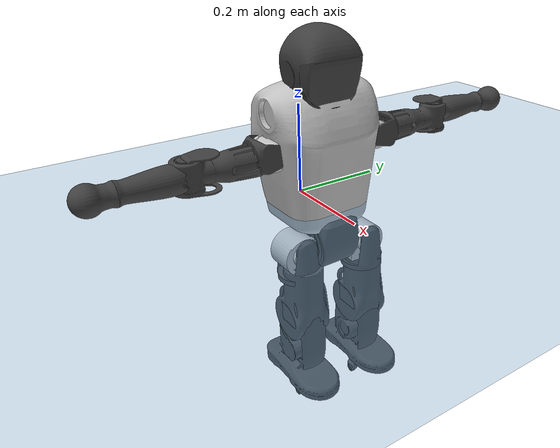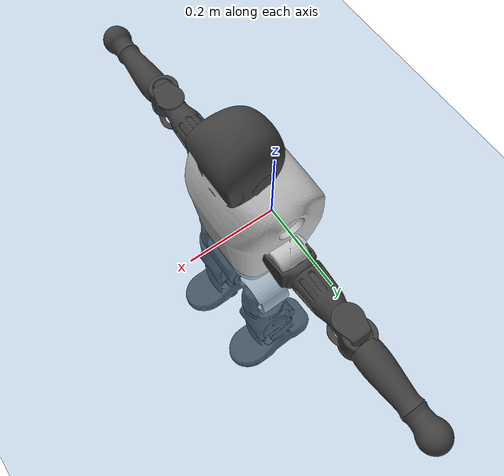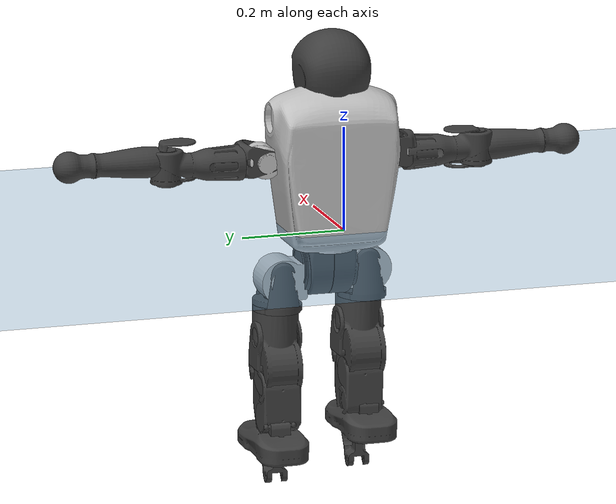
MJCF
<mujoco model="T1">
  <compiler angle="radian" assetdir="assets" balanceinertia="true" inertiafromgeom="false"/>

  <option timestep="0.005" density="1.2" viscosity="2e-05"/>

  <size nkey="1"/>

  <visual>
    <quality shadowsize="8192"/>
    <map shadowclip="0.5"/>
  </visual>

  <default>
    <default class="/">
      <joint armature="0.01" damping="0.01" frictionloss="0.1"/>
      <geom contype="0" conaffinity="0" group="1" solref="-1000 -80"/>
      <site size="0.01 0.005 0.005" group="5"/>
      <general forcelimited="true" biastype="affine" gainprm="25" biasprm="0 -25 -0.6"/>
      <default class="t1">
        <geom rgba="0.25 0.25 0.25 1"/>
        <default class="visual">
          <geom type="mesh" group="2"/>
        </default>
        <default class="collision">
          <geom group="3"/>
        </default>
        <default class="foot">
          <geom size="0.1115 0.05 0.015" type="box" condim="6" group="4" priority="1" solimp="0.015 1 0.015"/>
        </default>
        <default class="reward_collision_sphere">
          <geom group="5" rgba="1 0 0 1"/>
        </default>
      </default>
    </default>
  </default>

  <asset>
    <texture type="skybox" colorspace="auto" name="//unnamed_texture_0" builtin="gradient" rgb1="0.95 0.95 0.95" rgb2="0.95 0.95 0.95" width="100" height="600"/>
    <texture type="2d" colorspace="auto" name="texplane" builtin="checker" rgb1="0.345 0.575 0.748" rgb2="0.345 0.575 0.748" markrgb="1 1 1" width="512" height="512"/>
    <material name="MatPlane" class="/" texture="texplane" texuniform="true" texrepeat="2 2" specular="0.9"/>
    <mesh name="Trunk" class="/" file="Trunk.stl"/>
    <mesh name="H1" class="/" file="H1.stl"/>
    <mesh name="H2" class="/" file="H2.stl"/>
    <mesh name="AL1" class="/" file="AL1.stl"/>
    <mesh name="AL2" class="/" file="AL2.stl"/>
    <mesh name="AL3" class="/" file="AL3.stl"/>
    <mesh name="left_hand_link" class="/" file="left_hand_link.stl"/>
    <mesh name="AR1" class="/" file="AR1.stl"/>
    <mesh name="AR2" class="/" file="AR2.stl"/>
    <mesh name="AR3" class="/" file="AR3.stl"/>
    <mesh name="right_hand_link" class="/" file="right_hand_link.stl"/>
    <mesh name="Waist" class="/" file="Waist.stl"/>
    <mesh name="Hip_Pitch_Left" class="/" file="Hip_Pitch_Left.stl"/>
    <mesh name="Hip_Roll_Left" class="/" file="Hip_Roll_Left.stl"/>
    <mesh name="Hip_Yaw_Left" class="/" file="Hip_Yaw_Left.stl"/>
    <mesh name="Shank_Left" class="/" file="Shank_Left.stl"/>
    <mesh name="Ankle_Cross_Left" class="/" file="Ankle_Cross_Left.stl"/>
    <mesh name="left_foot_link" class="/" file="left_foot_link.stl"/>
    <mesh name="Hip_Pitch_Right" class="/" file="Hip_Pitch_Right.stl"/>
    <mesh name="Hip_Roll_Right" class="/" file="Hip_Roll_Right.stl"/>
    <mesh name="Hip_Yaw_Right" class="/" file="Hip_Yaw_Right.stl"/>
    <mesh name="Shank_Right" class="/" file="Shank_Right.stl"/>
    <mesh name="Ankle_Cross_Right" class="/" file="Ankle_Cross_Right.stl"/>
    <mesh name="right_foot_link" class="/" file="right_foot_link.stl"/>
  </asset>

  <worldbody>
    <geom name="floor" class="/" size="100 100 0.125" type="plane" group="0" material="MatPlane"/>
    <light name="toplight_shadow" class="/" pos="0 0 5" dir="0.0990148 0.0990148 -0.990148" type="directional" ambient="0.04 0.04 0.04" diffuse="0.55 0.55 0.55" specular="0.12 0.12 0.12"/>
    <light name="toplight_fill" class="/" pos="0 0 5" dir="0.0990148 0.0990148 -0.990148" type="directional" castshadow="false" ambient="0.04 0.04 0.04" diffuse="0.3 0.3 0.3" specular="0.08 0.08 0.08"/>
    <body name="trunk" childclass="t1" pos="0.0021164 0.0078452 -0.00617794" quat="0.999991 0.00134525 0.00144209 0.00363654">
      <inertial pos="0.0615424 -0.00146314 0.0637088" quat="0.999979 -0.00210144 -0.00543579 -0.00279418" mass="7.27668" diaginertia="0.165979 0.0220202 0.00404203"/>
      <joint name="//unnamed_joint_0" type="free" armature="0" damping="0" frictionloss="0"/>
      <geom name="//unnamed_geom_1" class="visual" rgba="0.76 0.76 0.76 1" mesh="Trunk"/>
      <geom name="//unnamed_geom_2" class="collision" size="0.0644219 0.0858959 0.128844" pos="0.0698588 0 0.0748081" type="box"/>
      <geom name="//unnamed_geom_3" class="reward_collision_sphere" size="0.0987803" pos="0.0698588 0 0.0623401"/>
      <geom name="//unnamed_geom_4" class="reward_collision_sphere" size="0.0128844" pos="0.0698588 0.0670788 0"/>
      <geom name="//unnamed_geom_5" class="reward_collision_sphere" size="0.0128844" pos="0.0698588 -0.0670788 0"/>
      <geom name="//unnamed_geom_6" class="reward_collision_sphere" size="0.0128844" pos="0.0698588 0.0844404 0.112212"/>
      <geom name="//unnamed_geom_7" class="reward_collision_sphere" size="0.0128844" pos="0.0698588 -0.0844404 0.112212"/>
      <site name="imu" pos="-0.0308958 0.00344802 -0.00238824" size="0.00858959"/>
      <camera name="track" pos="0 -1.57833 0" quat="0.707107 0.707107 0 0" mode="trackcom"/>
      <camera name="ego_camera" pos="0.142046 0 0.261828" quat="-0.5 -0.5 0.5 0.5"/>
      <body name="H1" pos="0.0644534 -0.0084087 0.157438" quat="1 3.24362e-06 4.67661e-06 1.3659e-05">
        <inertial pos="0.00610598 -0.00365089 0.029514" quat="0.77155 -0.0330945 -0.0471815 0.633553" mass="0.292698" diaginertia="0.000550266 6.69954e-05 1.47969e-05"/>
        <joint name="AAHead_yaw" pos="0 0 0" axis="-0.0013449 0.000276354 0.999999" range="-1.51776 1.70573" armature="0.011786" damping="0" frictionloss="0.0389347"/>
        <geom name="//unnamed_geom_8" class="visual" mesh="H1"/>
        <body name="H2" pos="-0.00248792 -0.00033116 0.0336982" quat="1 -0.000112531 -0.000435232 -2.9106e-05">
          <inertial pos="0.00844491 -0.00212853 0.0620365" quat="0.98782 0.112087 -0.0814956 -0.0707626" mass="0.430299" diaginertia="0.00497116 0.000628017 0.000157707"/>
          <joint name="Head_pitch" pos="0 0 0" axis="-0.000892969 -0.999987 -0.00507703" range="-1.26231 0.384277" armature="0.012952" damping="0" frictionloss="0.088132"/>
          <geom name="//unnamed_geom_9" class="visual" mesh="H2"/>
          <geom name="//unnamed_geom_10" class="collision" size="0.0687167" pos="0.0116431 0 0.0685741"/>
          <geom name="//unnamed_geom_11" class="reward_collision_sphere" size="0.0773063" pos="0.0232863 0 0.0623401"/>
        </body>
      </body>
      <body name="AL1" pos="0.0678013 0.0852558 0.13665" quat="1 -0.000249035 9.66586e-05 9.90447e-05">
        <inertial pos="0.00284961 0.0350289 -0.000956967" quat="0.492325 0.534385 -0.472356 0.498927" mass="0.325784" diaginertia="0.00291831 0.000369908 2.43537e-05"/>
        <joint name="Left_Shoulder_Pitch" pos="0 0 0" axis="0.0210027 0.999776 -0.00259841" range="-3.27092 1.17185" armature="0.00771711" damping="0.00701227" frictionloss="0.0820037"/>
        <geom name="//unnamed_geom_12" class="visual" rgba="0.76 0.76 0.76 1" mesh="AL1"/>
        <body name="AL2" pos="0.00429702 0.0386532 0.0030851" quat="1 0.000563335 -0.000605632 -0.000311386">
          <inertial pos="0.00778564 0.0339501 -0.00124899" quat="0.484744 0.514481 -0.483136 0.516635" mass="0.104865" diaginertia="0.000852033 0.000106969 1.65848e-05"/>
          <joint name="Left_Shoulder_Roll" pos="0 0 0" axis="-0.999992 -0.00177314 0.00359584" range="-1.52084 1.64941" armature="0.00827084" damping="0" frictionloss="0.0800453"/>
          <geom name="//unnamed_geom_13" class="visual" mesh="AL2"/>
          <body name="AL3" pos="-0.00720764 0.0496545 -0.00366546" quat="0.999995 0.00306045 -0.000491711 0.000724477">
            <inertial pos="0.00954662 0.0692397 -0.0006044" quat="0.709115 0.705092 0.000724479 -0.000212823" mass="0.60138" diaginertia="0.0264709 0.00437068 6.0013e-05"/>
            <joint name="Left_Elbow_Pitch" pos="0 0 0" axis="-0.00616471 -0.999971 -0.00440654" range="-2.30726 2.26834" armature="0.0104091" damping="0" frictionloss="0.0834366"/>
            <geom name="//unnamed_geom_14" class="visual" mesh="AL3"/>
            <geom name="//unnamed_geom_15" class="collision" size="0.0257688 0.0644219" pos="0 0.0394581 0" quat="0.707105 0.707108 0 0" type="cylinder"/>
            <geom name="//unnamed_geom_16" class="reward_collision_sphere" size="0.0309225"/>
            <body name="left_hand_link" pos="0.00375128 0.117919 0.0107175" quat="0.999991 -0.00370831 0.00197953 -0.000852705">
              <inertial pos="-0.00191637 0.0917853 -0.00505913" quat="0.697816 0.716156 0.0122004 0.00485413" mass="0.231239" diaginertia="0.0176389 0.00269325 2.47487e-05"/>
              <joint name="Left_Elbow_Yaw" pos="0 0 0" axis="-0.00255218 -0.00533643 0.999983" range="-2.46182 0.0385369" armature="0.00799574" damping="0.0128653" frictionloss="0.0792966"/>
              <geom name="//unnamed_geom_17" class="visual" mesh="left_hand_link"/>
              <geom name="//unnamed_geom_18" class="collision" size="0.0257688 0.0751589" pos="0 0.102591 0" quat="0.707105 0.707108 0 0" type="cylinder"/>
              <geom name="//unnamed_geom_19" class="reward_collision_sphere" size="0.0429479"/>
              <geom name="//unnamed_geom_20" class="reward_collision_sphere" size="0.0300636" pos="0 0.0868079 0"/>
              <geom name="//unnamed_geom_21" class="reward_collision_sphere" size="0.0300636" pos="0 0.16967 0"/>
            </body>
          </body>
        </body>
      </body>
      <body name="AR1" pos="0.0629422 -0.0741031 0.140994" quat="1 0.000192305 0.000574002 -0.00046604">
        <inertial pos="0.00156491 -0.0278739 -0.00945647" quat="0.50728 0.491909 -0.503969 0.496697" mass="0.354512" diaginertia="0.00308904 0.000464363 2.91219e-05"/>
        <joint name="Right_Shoulder_Pitch" pos="0 0 0" axis="-0.0376557 -0.998997 0.0242211" range="-1.35766 3.26647" armature="0.00789304" damping="0.00683328" frictionloss="0.0573393"/>
        <geom name="//unnamed_geom_22" class="visual" rgba="0.76 0.76 0.76 1" mesh="AR1"/>
        <body name="AR2" pos="-0.00102306 -0.0331468 0.00242015" quat="0.999998 -0.00122414 -0.00126444 0.0012453">
          <inertial pos="0.00878591 -0.0282441 0.00461485" quat="0.517174 0.489455 -0.496835 0.496106" mass="0.0879182" diaginertia="0.000749959 8.89189e-05 1.62957e-05"/>
          <joint name="Right_Shoulder_Roll" pos="0 0 0" axis="-0.999862 0.00989233 0.0133164" stiffness="0.0019058" range="-1.70504 1.53084" armature="0.0120994" damping="4.62918e-05" frictionloss="0.0812609"/>
          <geom name="//unnamed_geom_23" class="visual" mesh="AR2"/>
          <body name="AR3" pos="-0.00115871 -0.0398474 -0.00854019" quat="0.999994 -0.00192273 0.00224339 0.00194797">
            <inertial pos="-0.0107793 -0.0654933 -0.00812123" quat="0.703708 0.710484 0.0012875 -0.00218781" mass="0.693992" diaginertia="0.0328339 0.00416623 6.39693e-05"/>
            <joint name="Right_Elbow_Pitch" pos="0 0 0" axis="0.000575418 1 -0.000706548" stiffness="0.0138031" range="-2.27836 2.23273" armature="0.00890459" damping="0" frictionloss="0.0390145"/>
            <geom name="//unnamed_geom_24" class="visual" mesh="AR3"/>
            <geom name="//unnamed_geom_25" class="collision" size="0.0257688 0.0644219" pos="0 -0.0394581 0" quat="0.707105 0.707108 0 0" type="cylinder"/>
            <geom name="//unnamed_geom_26" class="reward_collision_sphere" size="0.0309225"/>
            <body name="right_hand_link" pos="0.00469109 -0.1125 0.00141217" quat="1 -4.73498e-05 -9.10117e-06 6.32106e-05">
              <inertial pos="-0.000143941 -0.0870513 0.000565037" quat="0.70689 0.707263 -0.00172174 0.00905776" mass="0.197373" diaginertia="0.0154033 0.00219764 1.83804e-05"/>
              <joint name="Right_Elbow_Yaw" pos="0 0 0" axis="0.0303337 -0.0411266 0.998693" range="0.0187306 2.42746" armature="0.00992157" damping="0" frictionloss="0.0685466"/>
              <geom name="//unnamed_geom_27" class="visual" mesh="right_hand_link"/>
              <geom name="//unnamed_geom_28" class="collision" size="0.0257688 0.0751589" pos="0 -0.102591 0" quat="0.707105 0.707108 0 0" type="cylinder"/>
              <geom name="//unnamed_geom_29" class="reward_collision_sphere" size="0.0429479"/>
              <geom name="//unnamed_geom_30" class="reward_collision_sphere" size="0.0300636" pos="0 -0.0868079 0"/>
              <geom name="//unnamed_geom_31" class="reward_collision_sphere" size="0.0300636" pos="0 -0.16967 0"/>
            </body>
          </body>
        </body>
      </body>
      <body name="Waist" pos="0.0836296 0.00248718 -0.0772247" quat="0.999988 0.00345395 0.00313308 -0.00159249">
        <inertial pos="0.0117604 -0.00618777 0.0104199" quat="0.979835 0.0420448 -0.194002 0.0227847" mass="1.82956" diaginertia="0.0118186 0.00165853 0.000452098"/>
        <joint name="Waist" pos="0 0 0" axis="-0.0060444 -0.0226546 0.999725" range="-1.57947 1.56621" armature="0.00837816" damping="0.0158082" frictionloss="0.0914998"/>
        <geom name="//unnamed_geom_32" class="visual" mesh="Waist"/>
        <body name="Hip_Pitch_Left" pos="0.00385835 0.0899175 -0.0074621" quat="1 -8.33427e-05 4.56645e-05 0.000162627">
          <inertial pos="-0.00812843 -0.00358968 -0.0117733" quat="0.980914 0.192655 0.00361549 -0.0260524" mass="0.624983" diaginertia="0.00404313 0.000387361 0.000112738"/>
          <joint name="Left_Hip_Pitch" pos="0 0 0" axis="-0.0256213 0.999432 -0.0218957" range="-1.84716 1.5627" armature="0.00684692" damping="0.000220376" frictionloss="0.0940438"/>
          <geom name="//unnamed_geom_33" class="visual" rgba="0.76 0.76 0.76 1" mesh="Hip_Pitch_Left"/>
          <body name="Hip_Roll_Left" pos="0.0052536 0.00274162 -0.0035723" quat="1 0.00019408 0.000352225 -4.75828e-05">
            <inertial pos="0.00247928 0.0102493 -0.0311631" quat="0.708652 -0.00731795 -0.00583103 0.705496" mass="0.258359" diaginertia="0.00441644 0.000559872 4.50972e-05"/>
            <joint name="Left_Hip_Roll" pos="0 0 0" axis="-0.999895 -0.00832763 -0.0118977" stiffness="0.00250732" range="-1.57621 0.128966" armature="0.00852487" damping="0.0572021" frictionloss="0.0579579"/>
            <geom name="//unnamed_geom_34" class="visual" mesh="Hip_Roll_Left"/>
            <geom name="//unnamed_geom_35" class="reward_collision_sphere" size="0.0472427"/>
            <body name="Hip_Yaw_Left" pos="0.00189634 0.00302868 -0.0529713" quat="0.999998 -0.00102899 0.000135233 0.00189306">
              <inertial pos="-0.00801025 -0.00116021 -0.0498348" quat="0.693203 -0.0380007 -0.033605 0.718955" mass="1.39424" diaginertia="0.0593736 0.00879915 0.000274398"/>
              <joint name="Left_Hip_Yaw" pos="0 0 0" axis="-0.0126435 -0.00325371 -0.999915" stiffness="0.0401843" range="-0.799415 0.983901" armature="0.00814401" damping="0" frictionloss="0.0905353"/>
              <geom name="//unnamed_geom_36" class="visual" mesh="Hip_Yaw_Left"/>
              <geom name="//unnamed_geom_37" class="collision" size="0.0429479 0.0687167" type="cylinder"/>
              <body name="Shank_Left" pos="-0.0128155 0.00241922 -0.0739022" quat="1 0.000777066 0.000403746 0.000287262">
                <inertial pos="-0.000354135 0.0033529 -0.0769767" quat="0.998107 0.0156964 -0.00963845 0.0586802" mass="1.07508" diaginertia="0.0694237 0.0119314 0.000190381"/>
                <joint name="Left_Knee_Pitch" pos="0 0 0" axis="0.0135502 0.999904 -0.00288749" range="0.0100957 2.43872" armature="0.00592897" damping="0.0341727" frictionloss="0.0778064"/>
                <geom name="//unnamed_geom_38" class="visual" mesh="Shank_Left"/>
                <geom name="//unnamed_geom_39" class="collision" size="0.0429479 0.0644219" pos="0 0 -0.0748081" type="cylinder"/>
                <geom name="//unnamed_geom_40" class="reward_collision_sphere" size="0.0558323"/>
                <body name="Ankle_Cross_Left" pos="-0.0080754 0.00131581 -0.185465" quat="0.999998 -0.000607008 0.00105274 0.00152357">
                  <inertial pos="0.00671035 0.000909984 -0.00905665" quat="0.447811 0.544963 0.555762 0.440011" mass="0.0477296" diaginertia="6.63601e-05 7.96711e-06 1.05494e-06"/>
                  <joint name="Left_Ankle_Pitch" pos="0 0 0" axis="0.00327389 0.999994 -0.00151046" stiffness="0.0337131" range="-0.875054 0.331163" armature="0.00400011" damping="0" frictionloss="0.0939293"/>
                  <geom name="//unnamed_geom_41" class="visual" mesh="Ankle_Cross_Left"/>
                  <body name="left_foot_link" pos="0.00101352 0.00557038 -0.0128633" quat="0.999985 -0.00187526 -0.00499158 0.00145085">
                    <inertial pos="0.00618445 0.00394559 -0.00690476" quat="0.0242327 0.637268 -0.0287724 0.769724" mass="0.388501" diaginertia="0.00526498 0.000703353 0.00017787"/>
                    <joint name="Left_Ankle_Roll" pos="0 0 0" axis="-0.998591 0.0271912 -0.0455594" range="-0.469242 0.338541" armature="0.00900035" damping="0.0387903" frictionloss="0.0862664"/>
                    <geom name="//unnamed_geom_42" class="visual" mesh="left_foot_link"/>
                    <geom name="left_foot" class="foot" size="0.0833463 0.0582652 0.0117059" pos="0.0116431 0 -0.00935101"/>
                    <geom name="//unnamed_geom_44" class="reward_collision_sphere" size="0.0446659" pos="0.0116431 0 -0.00935101"/>
                    <geom name="//unnamed_geom_45" class="reward_collision_sphere" size="0.0257688" pos="0.11061 -0.0181507 -0.00935101"/>
                    <geom name="//unnamed_geom_46" class="reward_collision_sphere" size="0.0257688" pos="-0.0815019 -0.0181507 -0.00935101"/>
                    <site name="left_foot" class="foot" pos="0.0116431 0 -0.00935101" size="0.00858959"/>
                  </body>
                </body>
              </body>
            </body>
          </body>
        </body>
        <body name="Hip_Pitch_Right" pos="-0.000688369 -0.0792896 0.0102096" quat="1 -3.02699e-05 -6.93493e-05 -0.000545419">
          <inertial pos="0.0101977 0.0142094 -0.00972466" quat="0.973517 -0.228041 0.0143403 -0.00756351" mass="0.647267" diaginertia="0.00358145 0.000414401 0.000119822"/>
          <joint name="Right_Hip_Pitch" pos="0 0 0" axis="0.003128 -0.999992 -0.00262902" stiffness="0.00614711" range="-1.56494 1.90032" armature="0.00939176" damping="0.0518114" frictionloss="0.0763134"/>
          <geom name="//unnamed_geom_47" class="visual" rgba="0.76 0.76 0.76 1" mesh="Hip_Pitch_Right"/>
          <body name="Hip_Roll_Right" pos="0.00470345 0.00394291 -0.00234599" quat="0.999998 -0.000766993 0.000819355 0.00191396">
            <inertial pos="0.00707048 -0.00177521 -0.0390981" quat="0.693331 -0.0288738 -0.0310533 0.719371" mass="0.233652" diaginertia="0.0032398 0.000463445 4.66837e-05"/>
            <joint name="Right_Hip_Roll" pos="0 0 0" axis="-0.999985 -0.00204989 0.00514897" range="-0.216886 1.59531" armature="0.00809466" damping="0.00377386" frictionloss="0.0620916"/>
            <geom name="//unnamed_geom_48" class="visual" mesh="Hip_Roll_Right"/>
            <geom name="//unnamed_geom_49" class="reward_collision_sphere" size="0.0472427"/>
            <body name="Hip_Yaw_Right" pos="0.00992619 0.00367808 -0.0499212" quat="0.999999 -0.000151149 0.000135675 0.00115417">
              <inertial pos="-0.00876913 0.000622544 -0.0602605" quat="0.712613 -0.0231057 -0.0308807 0.700497" mass="1.3161" diaginertia="0.047234 0.00764177 0.000207812"/>
              <joint name="Right_Hip_Yaw" pos="0 0 0" axis="-0.00312947 -0.00225327 -0.999993" range="-1.04866 0.9543" armature="0.0089765" damping="0" frictionloss="0.0923249"/>
              <geom name="//unnamed_geom_50" class="visual" mesh="Hip_Yaw_Right"/>
              <geom name="//unnamed_geom_51" class="collision" size="0.0429479 0.0687167" type="cylinder"/>
              <body name="Shank_Right" pos="-0.00877326 0.00354081 -0.0780411" quat="1 -0.000755957 0.000180295 -0.000283028">
                <inertial pos="-0.00609507 0.00735366 -0.0777661" quat="0.999451 0.0164974 -0.0283065 -0.00497678" mass="0.998219" diaginertia="0.0751246 0.0104037 0.000199586"/>
                <joint name="Right_Knee_Pitch" pos="0 0 0" axis="-0.0108107 -0.999938 0.00279563" stiffness="0.00221954" range="-2.16535 0.0240323" armature="0.00885353" damping="0" frictionloss="0.0811844"/>
                <geom name="//unnamed_geom_52" class="visual" mesh="Shank_Right"/>
                <geom name="//unnamed_geom_53" class="collision" size="0.0429479 0.0644219" pos="0 0 -0.0748081" type="cylinder"/>
                <geom name="//unnamed_geom_54" class="reward_collision_sphere" size="0.0558323"/>
                <body name="Ankle_Cross_Right" pos="0.00312845 -0.000171677 -0.172883" quat="1 -0.000210079 5.52833e-05 -0.000104966">
                  <inertial pos="-0.0078359 -0.00343595 -0.00476373" quat="0.442861 0.553145 0.549918 0.442148" mass="0.0501128" diaginertia="5.67238e-05 8.54059e-06 9.76461e-07"/>
                  <joint name="Right_Ankle_Pitch" pos="0 0 0" axis="-0.0268963 -0.999146 -0.0313629" stiffness="0.032776" range="-0.445375 0.996821" armature="0.00869585" damping="0" frictionloss="0.0900305"/>
                  <geom name="//unnamed_geom_55" class="visual" mesh="Ankle_Cross_Right"/>
                  <body name="right_foot_link" pos="-0.00426831 -0.00767689 -0.0166272" quat="1 0.000460421 0.000206145 -0.000338592">
                    <inertial pos="-0.000338924 -0.00765378 0.00480495" quat="0.0161384 0.64603 0.0125841 0.763038" mass="0.512112" diaginertia="0.00668731 0.000840826 0.000263244"/>
                    <joint name="Right_Ankle_Roll" pos="0 0 0" axis="-0.999956 -0.00859325 0.00379913" range="-0.299432 0.254518" armature="0.0132714" damping="0.0570052" frictionloss="0.0609163"/>
                    <geom name="//unnamed_geom_56" class="visual" mesh="right_foot_link"/>
                    <geom name="right_foot" class="foot" size="0.0770213 0.0552795 0.00915567" pos="0.0116431 0 -0.00935101"/>
                    <geom name="//unnamed_geom_58" class="reward_collision_sphere" size="0.0343584"/>
                    <geom name="//unnamed_geom_59" class="reward_collision_sphere" size="0.0257688" pos="0.0116431 0 -0.00935101"/>
                    <geom name="//unnamed_geom_60" class="reward_collision_sphere" size="0.0257688" pos="0.11061 0.0181507 -0.00935101"/>
                    <geom name="//unnamed_geom_61" class="reward_collision_sphere" size="0.0257688" pos="-0.0815019 0.0181507 -0.00935101"/>
                    <site name="right_foot" class="foot" pos="0.0116431 0 -0.00935101" size="0.00858959"/>
                  </body>
                </body>
              </body>
            </body>
          </body>
        </body>
      </body>
    </body>
  </worldbody>

  <contact>
    <pair class="/" geom1="floor" geom2="left_foot" name="//unnamed_contact_0"/>
    <pair class="/" geom1="floor" geom2="right_foot" name="//unnamed_contact_1"/>
  </contact>

  <actuator>
    <general name="AAHead_yaw" class="/" joint="AAHead_yaw" forcerange="-5.79336 5.79336" gainprm="23.077" biasprm="0 -23.077 -0.466985"/>
    <general name="Head_pitch" class="/" joint="Head_pitch" forcerange="-6.43105 6.43105" gainprm="23.077" biasprm="0 -23.077 -0.466985"/>
    <general name="Left_Shoulder_Pitch" class="/" joint="Left_Shoulder_Pitch" forcerange="-21.756 21.756" gainprm="23.077" biasprm="0 -23.077 -0.466985"/>
    <general name="Left_Shoulder_Roll" class="/" joint="Left_Shoulder_Roll" forcerange="-20.1922 20.1922" gainprm="23.077" biasprm="0 -23.077 -0.466985"/>
    <general name="Left_Elbow_Pitch" class="/" joint="Left_Elbow_Pitch" forcerange="-12.4396 12.4396" gainprm="23.077" biasprm="0 -23.077 -0.466985"/>
    <general name="Left_Elbow_Yaw" class="/" joint="Left_Elbow_Yaw" forcerange="-14.8111 14.8111" gainprm="23.077" biasprm="0 -23.077 -0.466985"/>
    <general name="Right_Shoulder_Pitch" class="/" joint="Right_Shoulder_Pitch" forcerange="-15.3578 15.3578" gainprm="23.077" biasprm="0 -23.077 -0.466985"/>
    <general name="Right_Shoulder_Roll" class="/" joint="Right_Shoulder_Roll" forcerange="-12.0792 12.0792" gainprm="23.077" biasprm="0 -23.077 -0.466985"/>
    <general name="Right_Elbow_Pitch" class="/" joint="Right_Elbow_Pitch" forcerange="-15.8418 15.8418" gainprm="23.077" biasprm="0 -23.077 -0.466985"/>
    <general name="Right_Elbow_Yaw" class="/" joint="Right_Elbow_Yaw" forcerange="-15.5919 15.5919" gainprm="23.077" biasprm="0 -23.077 -0.466985"/>
    <general name="Waist" class="/" joint="Waist" forcerange="-32.8485 32.8485" gainprm="23.077" biasprm="0 -23.077 -0.466985"/>
    <general name="Left_Hip_Pitch" class="/" joint="Left_Hip_Pitch" forcerange="-40.6986 40.6986" gainprm="23.077" biasprm="0 -23.077 -0.466985"/>
    <general name="Left_Hip_Roll" class="/" joint="Left_Hip_Roll" forcerange="-23.8963 23.8963" gainprm="23.077" biasprm="0 -23.077 -0.466985"/>
    <general name="Left_Hip_Yaw" class="/" joint="Left_Hip_Yaw" forcerange="-29.8337 29.8337" gainprm="23.077" biasprm="0 -23.077 -0.466985"/>
    <general name="Left_Knee_Pitch" class="/" joint="Left_Knee_Pitch" forcerange="-47.7722 47.7722" gainprm="23.077" biasprm="0 -23.077 -0.466985"/>
    <general name="Left_Ankle_Pitch" class="/" joint="Left_Ankle_Pitch" forcerange="-17.0419 17.0419" gainprm="23.077" biasprm="0 -23.077 -0.466985"/>
    <general name="Left_Ankle_Roll" class="/" joint="Left_Ankle_Roll" forcerange="-12.2452 12.2452" gainprm="23.077" biasprm="0 -23.077 -0.466985"/>
    <general name="Right_Hip_Pitch" class="/" joint="Right_Hip_Pitch" forcerange="-26.6224 26.6224" gainprm="23.077" biasprm="0 -23.077 -0.466985"/>
    <general name="Right_Hip_Roll" class="/" joint="Right_Hip_Roll" forcerange="-15.6609 15.6609" gainprm="23.077" biasprm="0 -23.077 -0.466985"/>
    <general name="Right_Hip_Yaw" class="/" joint="Right_Hip_Yaw" forcerange="-24.6351 24.6351" gainprm="23.077" biasprm="0 -23.077 -0.466985"/>
    <general name="Right_Knee_Pitch" class="/" joint="Right_Knee_Pitch" forcerange="-44.3067 44.3067" gainprm="23.077" biasprm="0 -23.077 -0.466985"/>
    <general name="Right_Ankle_Pitch" class="/" joint="Right_Ankle_Pitch" forcerange="-23.7591 23.7591" gainprm="23.077" biasprm="0 -23.077 -0.466985"/>
    <general name="Right_Ankle_Roll" class="/" joint="Right_Ankle_Roll" forcerange="-9.52328 9.52328" gainprm="23.077" biasprm="0 -23.077 -0.466985"/>
  </actuator>

  <sensor>
    <gyro site="imu" name="imu_angular_velocity"/>
    <velocimeter site="imu" name="imu_linear_velocity"/>
    <framelinvel objtype="site" objname="left_foot" name="left_foot_global_linear_velocity"/>
    <framelinvel objtype="site" objname="right_foot" name="right_foot_global_linear_velocity"/>
  </sensor>

  <keyframe>
    <key name="home" qpos="0 0 0.6385 1 0 0 0 0 0 0 1.4 0 -0.4 0 -1.4 0 0.4 0 -0.4 0 0 0.8 -0.4 0 0.4 0 0 -0.8 0.4 0"/>
  </keyframe>
</mujoco>
